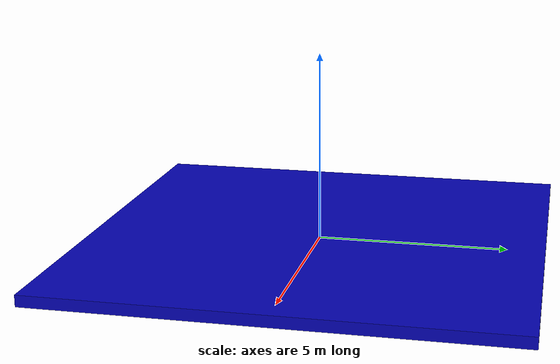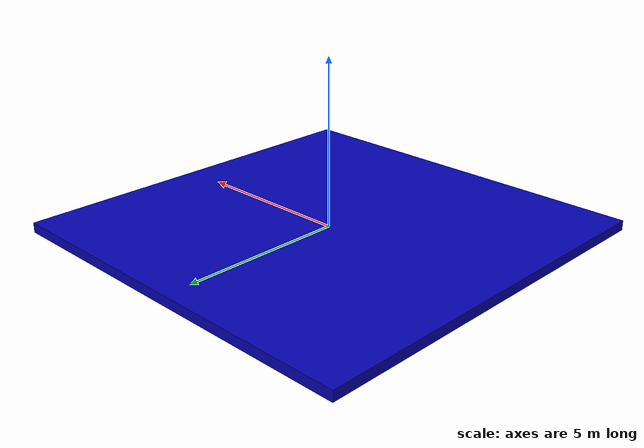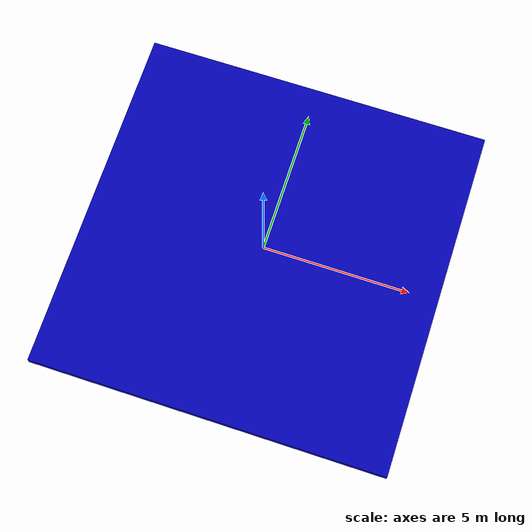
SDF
<?xml version="1.0" ?>
<sdf version="1.5">
  <model name="Blue Plane">
    <link name="link">
      <collision name="collision">
        <geometry>
          <mesh>
            <scale>2 2 1</scale>
            <uri>model://bluePlane/meshes/bluePlane.dae</uri>
          </mesh>
        </geometry>
      </collision>
      <visual name="visual">
        <geometry>
          <mesh>
            <scale>2 2 1</scale>
            <uri>model://bluePlane/meshes/bluePlane.dae</uri>
          </mesh>
        </geometry>
      </visual>
      <inertial>
        <inertia>
          <ixx>12030</ixx>
          <ixy></ixy>
          <ixz>0</ixz>
          <iyy>12030</iyy>
          <iyz>0</iyz>
          <izz>24000</izz>
        </inertia>
        <mass>1000</mass>
      </inertial>
    </link>

    <gazebo reference="link">
      <kp>100000000</kp>
      <kd>500</kd>
      <minDepth>10</minDepth>
      <maxVel>0</maxVel>
    </gazebo>
  </model>
</sdf>
